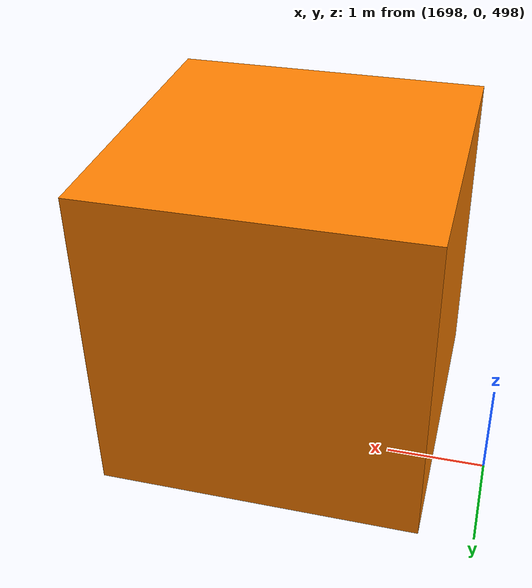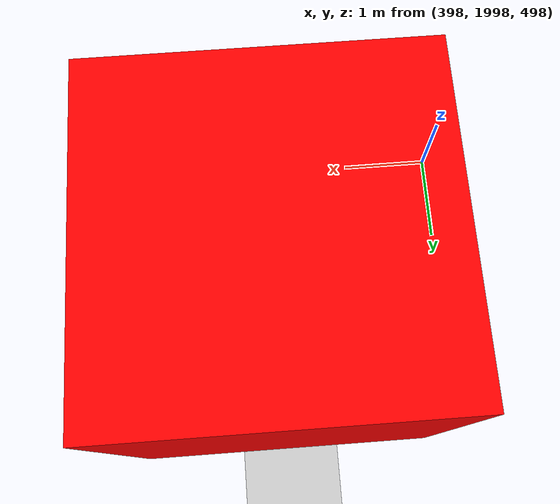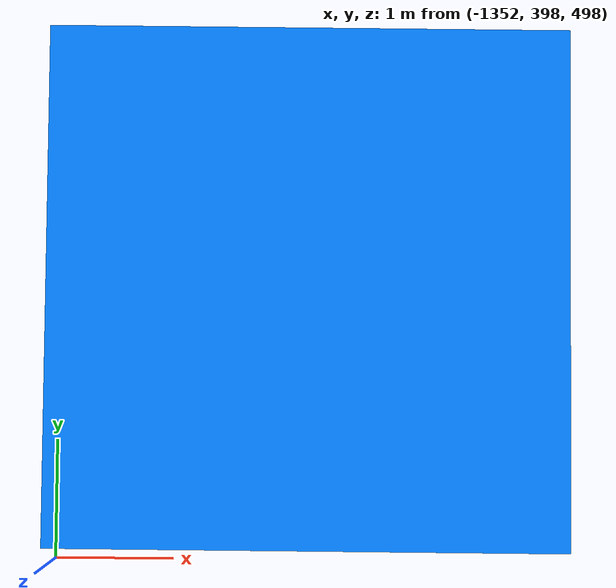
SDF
<?xml version="1.0" encoding="UTF-8"?>
<sdf version="1.9">
  <world name="mbc3_radar_moving">
    <physics type="ode">
      <max_step_size>0.004</max_step_size>
      <real_time_factor>1.0</real_time_factor>
      <real_time_update_rate>250</real_time_update_rate>
    </physics>
    <gravity>0 0 -9.8</gravity>
    <magnetic_field>6e-06 2.3e-05 -4.2e-05</magnetic_field>
    <atmosphere type="adiabatic"/>
    <scene>
      <grid>false</grid>
      <ambient>0.4 0.4 0.4 1</ambient>
      <background>0.7 0.7 0.7 1</background>
      <shadows>true</shadows>
    </scene>
    <model name="ground_plane">
      <static>true</static>
      <link name="link">
        <collision name="collision">
          <geometry>
            <plane>
              <normal>0 0 1</normal>
              <size>1 1</size>
            </plane>
          </geometry>
          <surface>
            <friction>
              <ode/>
            </friction>
            <bounce/>
            <contact/>
          </surface>
        </collision>
        <visual name="visual">
          <geometry>
            <plane>
              <normal>0 0 1</normal>
              <size>500 500</size>
            </plane>
          </geometry>
          <material>
            <ambient>0.8 0.8 0.8 1</ambient>
            <diffuse>0.8 0.8 0.8 1</diffuse>
            <specular>0.8 0.8 0.8 1</specular>
          </material>
        </visual>
        <pose>0 0 0 0 -0 0</pose>
        <inertial>
          <pose>0 0 0 0 -0 0</pose>
          <mass>1</mass>
          <inertia>
            <ixx>1</ixx>
            <ixy>0</ixy>
            <ixz>0</ixz>
            <iyy>1</iyy>
            <iyz>0</iyz>
            <izz>1</izz>
          </inertia>
        </inertial>
        <enable_wind>false</enable_wind>
      </link>
      <pose>0 0 0 0 -0 0</pose>
      <self_collide>false</self_collide>
    </model>
    <light name="sunUTC" type="directional">
      <pose>0 0 500 0 -0 0</pose>
      <cast_shadows>true</cast_shadows>
      <intensity>1</intensity>
      <direction>0.001 0.625 -0.78</direction>
      <diffuse>0.904 0.904 0.904 1</diffuse>
      <specular>0.271 0.271 0.271 1</specular>
      <attenuation>
        <range>2000</range>
        <linear>0</linear>
        <constant>1</constant>
        <quadratic>0</quadratic>
      </attenuation>
      <spot>
        <inner_angle>0</inner_angle>
        <outer_angle>0</outer_angle>
        <falloff>0</falloff>
      </spot>
    </light>
    <spherical_coordinates>
      <surface_model>EARTH_WGS84</surface_model>
      <world_frame_orientation>ENU</world_frame_orientation>
      <latitude_deg>47.397971057728974</latitude_deg>
      <longitude_deg> 8.546163739800146</longitude_deg>
      <elevation>0</elevation>
    </spherical_coordinates>

    <model name="radar_target_1">
      <pose>400 2000 500 0 0 0</pose>
      <link name="link">
        <kinematic>true</kinematic>
        <gravity>false</gravity>
        <inertial><mass>5</mass><inertia><ixx>0.167</ixx><ixy>0</ixy><ixz>0</ixz><iyy>0.167</iyy><iyz>0</iyz><izz>0.167</izz></inertia></inertial>
        <collision name="col"><geometry><box><size>3 3 3</size></box></geometry></collision>
        <visual name="vis"><geometry><box><size>3 3 3</size></box></geometry>
          <material><ambient>1 0 0 1</ambient><diffuse>1 0 0 1</diffuse></material></visual>
      </link>
      <plugin filename="gz-sim-trajectory-follower-system" name="gz::sim::systems::TrajectoryFollower">
        <link_name>link</link_name><loop>true</loop><force>800</force><torque>800</torque>
        <waypoints>
          <waypoint>400.0 2000.0</waypoint>
          <waypoint>369.6 2153.1</waypoint>
          <waypoint>282.8 2282.8</waypoint>
          <waypoint>153.1 2369.6</waypoint>
          <waypoint>0.0 2400.0</waypoint>
          <waypoint>-153.1 2369.6</waypoint>
          <waypoint>-282.8 2282.8</waypoint>
          <waypoint>-369.6 2153.1</waypoint>
          <waypoint>-400.0 2000.0</waypoint>
          <waypoint>-369.6 1846.9</waypoint>
          <waypoint>-282.8 1717.2</waypoint>
          <waypoint>-153.1 1630.4</waypoint>
          <waypoint>-0.0 1600.0</waypoint>
          <waypoint>153.1 1630.4</waypoint>
          <waypoint>282.8 1717.2</waypoint>
          <waypoint>369.6 1846.9</waypoint>
        </waypoints>
      </plugin>
    </model>
    <model name="radar_target_2">
      <pose>1700 0 500 0 0 0</pose>
      <link name="link">
        <kinematic>true</kinematic>
        <gravity>false</gravity>
        <inertial><mass>5</mass><inertia><ixx>0.167</ixx><ixy>0</ixy><ixz>0</ixz><iyy>0.167</iyy><iyz>0</iyz><izz>0.167</izz></inertia></inertial>
        <collision name="col"><geometry><box><size>3 3 3</size></box></geometry></collision>
        <visual name="vis"><geometry><box><size>3 3 3</size></box></geometry>
          <material><ambient>1 0.5 0 1</ambient><diffuse>1 0.5 0 1</diffuse></material></visual>
      </link>
      <plugin filename="gz-sim-trajectory-follower-system" name="gz::sim::systems::TrajectoryFollower">
        <link_name>link</link_name><loop>true</loop><force>300</force><torque>300</torque>
        <waypoints>
          <waypoint>1700.0 0.0</waypoint>
          <waypoint>1677.2 114.8</waypoint>
          <waypoint>1612.1 212.1</waypoint>
          <waypoint>1514.8 277.2</waypoint>
          <waypoint>1400.0 300.0</waypoint>
          <waypoint>1285.2 277.2</waypoint>
          <waypoint>1187.9 212.1</waypoint>
          <waypoint>1122.8 114.8</waypoint>
          <waypoint>1100.0 0.0</waypoint>
          <waypoint>1122.8 -114.8</waypoint>
          <waypoint>1187.9 -212.1</waypoint>
          <waypoint>1285.2 -277.2</waypoint>
          <waypoint>1400.0 -300.0</waypoint>
          <waypoint>1514.8 -277.2</waypoint>
          <waypoint>1612.1 -212.1</waypoint>
          <waypoint>1677.2 -114.8</waypoint>
        </waypoints>
      </plugin>
    </model>
    <model name="radar_target_3">
      <pose>1400 900 500 0 0 0</pose>
      <link name="link">
        <kinematic>true</kinematic>
        <gravity>false</gravity>
        <inertial><mass>5</mass><inertia><ixx>0.167</ixx><ixy>0</ixy><ixz>0</ixz><iyy>0.167</iyy><iyz>0</iyz><izz>0.167</izz></inertia></inertial>
        <collision name="col"><geometry><box><size>3 3 3</size></box></geometry></collision>
        <visual name="vis"><geometry><box><size>3 3 3</size></box></geometry>
          <material><ambient>1 1 0 1</ambient><diffuse>1 1 0 1</diffuse></material></visual>
      </link>
      <plugin filename="gz-sim-trajectory-follower-system" name="gz::sim::systems::TrajectoryFollower">
        <link_name>link</link_name><loop>true</loop><force>2000</force><torque>2000</torque>
        <waypoints>
          <waypoint>1400.0 900.0</waypoint>
          <waypoint>1361.9 1091.3</waypoint>
          <waypoint>1253.6 1253.6</waypoint>
          <waypoint>1091.3 1361.9</waypoint>
          <waypoint>900.0 1400.0</waypoint>
          <waypoint>708.7 1361.9</waypoint>
          <waypoint>546.4 1253.6</waypoint>
          <waypoint>438.1 1091.3</waypoint>
          <waypoint>400.0 900.0</waypoint>
          <waypoint>438.1 708.7</waypoint>
          <waypoint>546.4 546.4</waypoint>
          <waypoint>708.7 438.1</waypoint>
          <waypoint>900.0 400.0</waypoint>
          <waypoint>1091.3 438.1</waypoint>
          <waypoint>1253.6 546.4</waypoint>
          <waypoint>1361.9 708.7</waypoint>
        </waypoints>
      </plugin>
    </model>
    <model name="radar_target_4">
      <pose>600 -2400 500 0 0 0</pose>
      <link name="link">
        <kinematic>true</kinematic>
        <gravity>false</gravity>
        <inertial><mass>5</mass><inertia><ixx>0.167</ixx><ixy>0</ixy><ixz>0</ixz><iyy>0.167</iyy><iyz>0</iyz><izz>0.167</izz></inertia></inertial>
        <collision name="col"><geometry><box><size>3 3 3</size></box></geometry></collision>
        <visual name="vis"><geometry><box><size>3 3 3</size></box></geometry>
          <material><ambient>0 1 0 1</ambient><diffuse>0 1 0 1</diffuse></material></visual>
      </link>
      <plugin filename="gz-sim-trajectory-follower-system" name="gz::sim::systems::TrajectoryFollower">
        <link_name>link</link_name><loop>true</loop><force>4000</force><torque>4000</torque>
        <waypoints>
          <waypoint>600.0 -2400.0</waypoint>
          <waypoint>554.3 -2170.4</waypoint>
          <waypoint>424.3 -1975.7</waypoint>
          <waypoint>229.6 -1845.7</waypoint>
          <waypoint>0.0 -1800.0</waypoint>
          <waypoint>-229.6 -1845.7</waypoint>
          <waypoint>-424.3 -1975.7</waypoint>
          <waypoint>-554.3 -2170.4</waypoint>
          <waypoint>-600.0 -2400.0</waypoint>
          <waypoint>-554.3 -2629.6</waypoint>
          <waypoint>-424.3 -2824.3</waypoint>
          <waypoint>-229.6 -2954.3</waypoint>
          <waypoint>-0.0 -3000.0</waypoint>
          <waypoint>229.6 -2954.3</waypoint>
          <waypoint>424.3 -2824.3</waypoint>
          <waypoint>554.3 -2629.6</waypoint>
        </waypoints>
      </plugin>
    </model>
    <model name="radar_target_5">
      <pose>-1350 400 500 0 0 0</pose>
      <link name="link">
        <kinematic>true</kinematic>
        <gravity>false</gravity>
        <inertial><mass>5</mass><inertia><ixx>0.167</ixx><ixy>0</ixy><ixz>0</ixz><iyy>0.167</iyy><iyz>0</iyz><izz>0.167</izz></inertia></inertial>
        <collision name="col"><geometry><box><size>3 3 3</size></box></geometry></collision>
        <visual name="vis"><geometry><box><size>3 3 3</size></box></geometry>
          <material><ambient>0 0.5 1 1</ambient><diffuse>0 0.5 1 1</diffuse></material></visual>
      </link>
      <plugin filename="gz-sim-trajectory-follower-system" name="gz::sim::systems::TrajectoryFollower">
        <link_name>link</link_name><loop>true</loop><force>1200</force><torque>1200</torque>
        <waypoints>
          <waypoint>-1350.0 400.0</waypoint>
          <waypoint>-1384.3 572.2</waypoint>
          <waypoint>-1481.8 718.2</waypoint>
          <waypoint>-1627.8 815.7</waypoint>
          <waypoint>-1800.0 850.0</waypoint>
          <waypoint>-1972.2 815.7</waypoint>
          <waypoint>-2118.2 718.2</waypoint>
          <waypoint>-2215.7 572.2</waypoint>
          <waypoint>-2250.0 400.0</waypoint>
          <waypoint>-2215.7 227.8</waypoint>
          <waypoint>-2118.2 81.8</waypoint>
          <waypoint>-1972.2 -15.7</waypoint>
          <waypoint>-1800.0 -50.0</waypoint>
          <waypoint>-1627.8 -15.7</waypoint>
          <waypoint>-1481.8 81.8</waypoint>
          <waypoint>-1384.3 227.8</waypoint>
        </waypoints>
      </plugin>
    </model>
  </world>
</sdf>
